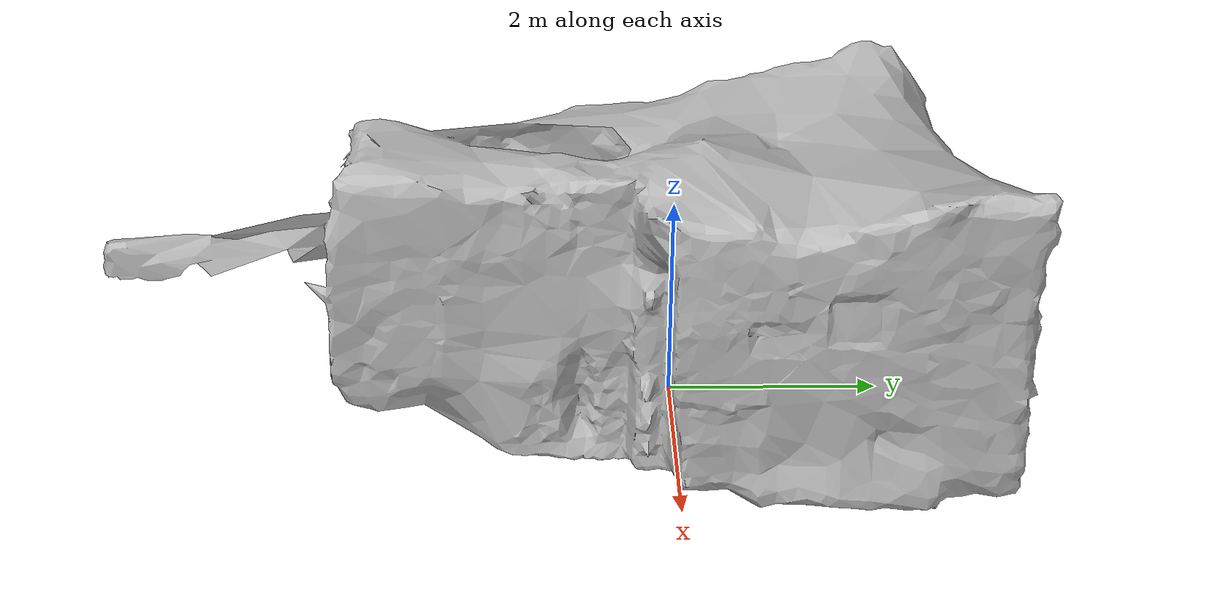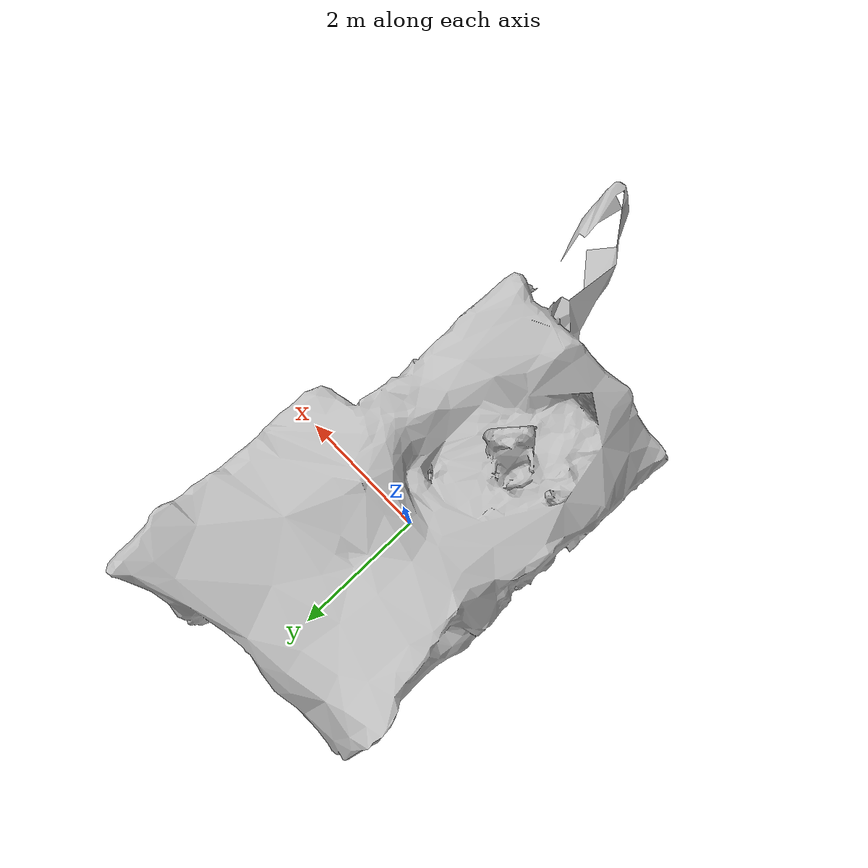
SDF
<sdf version="1.6">
  <model name="photogram_env">
    <static>true</static>
    <link name="link">
      <visual name="visual">
        <geometry>
          <mesh>
            <uri>model://photogram_env/meshes/Test_Scan.dae</uri>
          </mesh>
        </geometry>
      </visual>
      <collision name="collision">
        <geometry>
          <mesh>
            <uri>model://photogram_env/meshes/Test_Scan.dae</uri>
          </mesh>
        </geometry>
      </collision>
    </link>
  </model>
</sdf>
